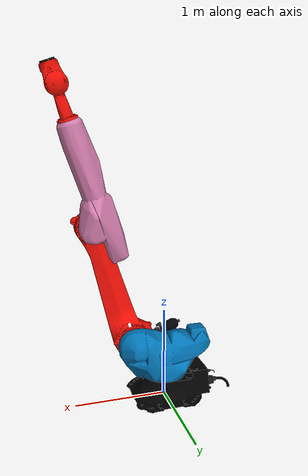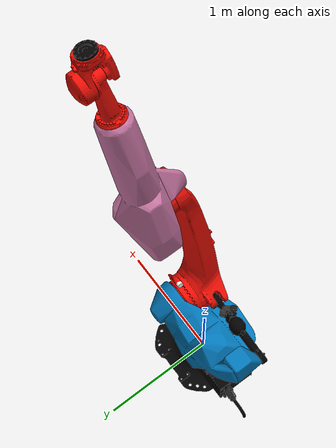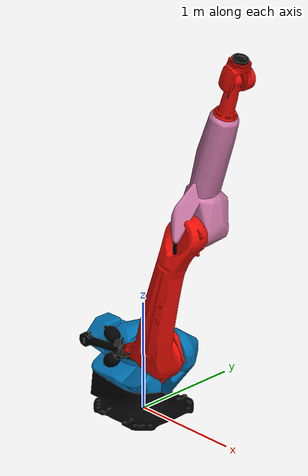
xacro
<?xml version="1.0"?>
<robot xmlns:xacro="http://www.ros.org/wiki/xacro" name="kr120_r3100_2">
  <!-- Import macro files  -->
  <xacro:include filename="$(find kuka_quantec_support)/urdf/kr120_r3100_2_macro.xacro"/>
  <xacro:include filename="$(find kuka_quantec_support)/urdf/kr_quantec_ros2_control_macro.xacro"/>
  <!-- Read additional arguments  -->
  <xacro:arg name="driver_version" default="rsi_only"/>
  <xacro:arg name="mode" default="hardware"/>
  <xacro:arg name="use_gpio" default="false"/>
  <xacro:arg name="roundtrip_time" default="0"/>
  <xacro:arg name="client_ip" default="0.0.0.0"/>
  <xacro:arg name="client_port" default="59152"/>
  <xacro:arg name="mxa_client_port" default="1337"/>
  <xacro:arg name="controller_ip" default="0.0.0.0"/>
  <xacro:arg name="verify_robot_model" default="true"/>
  <xacro:arg name="prefix" default=""/>
  <xacro:arg name="x" default="0"/>
  <xacro:arg name="y" default="0"/>
  <xacro:arg name="z" default="0"/>
  <xacro:arg name="roll" default="0"/>
  <xacro:arg name="pitch" default="0"/>
  <xacro:arg name="yaw" default="0"/>
  <xacro:kuka_quantec_ros2_control name="$(arg prefix)kr120_r3100_2" driver_version="$(arg driver_version)" client_ip="$(arg client_ip)" client_port="$(arg client_port)" mxa_client_port="$(arg mxa_client_port)" controller_ip="$(arg controller_ip)" prefix="$(arg prefix)" mode="$(arg mode)" use_gpio="$(arg use_gpio)" roundtrip_time="$(arg roundtrip_time)" verify_robot_model="$(arg verify_robot_model)">
    <ext_axes_ros2_control_joints/>
  </xacro:kuka_quantec_ros2_control>
  <!-- world link -->
  <link name="world"/>
  <!-- robot links, joints -->
  <xacro:kuka_kr120_r3100_2_robot prefix="$(arg prefix)" package_name="kuka_quantec_support"/>
  <!-- default world - base_link joint -->
  <joint name="$(arg prefix)world-base_link" type="fixed">
    <parent link="world"/>
    <child link="$(arg prefix)base_link"/>
    <origin xyz="$(arg x) $(arg y) $(arg z)" rpy="$(arg roll) $(arg pitch) $(arg yaw)"/>
  </joint>
</robot>

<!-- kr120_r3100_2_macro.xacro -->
<robot xmlns:xacro="http://www.ros.org/wiki/xacro" name="kr120_r3100_2">
  <xacro:macro name="kuka_kr120_r3100_2_robot" params="prefix package_name">
    <link name="${prefix}base"/>
    <link name="${prefix}base_link">
      <collision>
        <geometry>
          <mesh filename="package://${package_name}/meshes/kr120_r3100_2/collision/base_link.stl"/>
        </geometry>
        <origin rpy="0.0 -0.0 0.0" xyz="0.0 0.0 0.0"/>
      </collision>
      <inertial>
        <inertia ixx="12.830880390826945" ixy="0.0" ixz="0.0" iyy="9.01196989503174" iyz="0.0" izz="14.295886015581125"/>
        <mass value="2.2596E2"/>
        <origin rpy="-0.0508601314118394 -0.001988338987840268 1.523148744399526" xyz="-0.05948933351035582 0.0021559506107275673 0.20325069304301646"/>
      </inertial>
      <visual>
        <geometry>
          <mesh filename="package://${package_name}/meshes/kr120_r3100_2/visual/base_link.dae"/>
        </geometry>
        <origin rpy="0.0 -0.0 0.0" xyz="0.0 0.0 0.0"/>
      </visual>
    </link>
    <link name="${prefix}flange"/>
    <link name="${prefix}link_1">
      <collision>
        <geometry>
          <mesh filename="package://${package_name}/meshes/kr120_r3100_2/collision/link_1.stl"/>
        </geometry>
        <origin rpy="-3.141592653589793 0.0 -0.0" xyz="0.0 -3.742520618194312e-17 0.30560000000000004"/>
      </collision>
      <inertial>
        <inertia ixx="13.20885880475748" ixy="0.0" ixz="0.0" iyy="31.494985324996097" iyz="0.0" izz="33.88389081824636"/>
        <mass value="3.6307E2"/>
        <origin rpy="1.8661968490595326 0.10258164628689452 -0.2163241142005634" xyz="0.02878717602666153 0.011875249400941966 -0.23402828104773188"/>
      </inertial>
      <visual>
        <geometry>
          <mesh filename="package://${package_name}/meshes/kr120_r3100_2/visual/link_1.dae"/>
        </geometry>
        <origin rpy="-3.141592653589793 0.0 -0.0" xyz="0.0 -3.742520618194312e-17 0.30560000000000004"/>
      </visual>
    </link>
    <link name="${prefix}link_2">
      <collision>
        <geometry>
          <mesh filename="package://${package_name}/meshes/kr120_r3100_2/collision/link_2.stl"/>
        </geometry>
        <origin rpy="1.5707963267948968 -0.0 1.5707963267948966" xyz="-0.645 -0.32999999999999996 0.07200000000000009"/>
      </collision>
      <inertial>
        <inertia ixx="6.111566329697298" ixy="0.0" ixz="0.0" iyy="82.75093024358236" iyz="0.0" izz="83.25859671643983"/>
        <mass value="2.5056E2"/>
        <origin rpy="0.5376277345261109 0.09067448308201616 0.007191247120022904" xyz="0.5778711685823755 -0.0013846982758620701 -0.12557167943805878"/>
      </inertial>
      <visual>
        <geometry>
          <mesh filename="package://${package_name}/meshes/kr120_r3100_2/visual/link_2.dae"/>
        </geometry>
        <origin rpy="1.5707963267948968 -0.0 1.5707963267948966" xyz="-0.645 -0.32999999999999996 0.07200000000000009"/>
      </visual>
    </link>
    <link name="${prefix}link_3">
      <collision>
        <geometry>
          <mesh filename="package://${package_name}/meshes/kr120_r3100_2/collision/link_3.stl"/>
        </geometry>
        <origin rpy="1.5707963267948968 -0.0 -0.0" xyz="-0.33000000000000007 1.995 0.1750000000000001"/>
      </collision>
      <inertial>
        <inertia ixx="3.4879392458865768" ixy="0.0" ixz="0.0" iyy="31.684130673011424" iyz="0.0" izz="32.63110611057522"/>
        <mass value="1.9993E2"/>
        <origin rpy="2.1420966009616143 -0.0660111257078755 -0.06380435922826509" xyz="0.2623321662581903 -0.0766338718551493 0.1376750342619917"/>
      </inertial>
      <visual>
        <geometry>
          <mesh filename="package://${package_name}/meshes/kr120_r3100_2/visual/link_3.dae"/>
        </geometry>
        <origin rpy="1.5707963267948968 -0.0 -0.0" xyz="-0.33000000000000007 1.995 0.1750000000000001"/>
      </visual>
    </link>
    <link name="${prefix}link_4">
      <collision>
        <geometry>
          <mesh filename="package://${package_name}/meshes/kr120_r3100_2/collision/link_4.stl"/>
        </geometry>
        <origin rpy="1.8369701987210297e-16 1.5707963267948966 0.0" xyz="-2.11 2.0519898299681579e-19 1.3579999999999999"/>
      </collision>
      <inertial>
        <inertia ixx="0.1613243661415463" ixy="0.0" ixz="0.0" iyy="1.3645139545174996" iyz="0.0" izz="1.391581276345236"/>
        <mass value="4.2411794929E1"/>
        <origin rpy="1.571145455207035 -1.4368320268822927 -1.571207124768485" xyz="-7.576446514074066E-6 0.019202388293896762 -0.19788874875249593"/>
      </inertial>
      <visual>
        <geometry>
          <mesh filename="package://${package_name}/meshes/kr120_r3100_2/visual/link_4.dae"/>
        </geometry>
        <origin rpy="1.8369701987210297e-16 1.5707963267948966 0.0" xyz="-2.11 2.0519898299681579e-19 1.3579999999999999"/>
      </visual>
    </link>
    <link name="${prefix}link_5">
      <collision>
        <geometry>
          <mesh filename="package://${package_name}/meshes/kr120_r3100_2/collision/link_5.stl"/>
        </geometry>
        <origin rpy="1.5707963267948968 -3.749399456654644e-33 -6.123233995736766e-17" xyz="-1.7499999999999998 2.11 -0.09600000000000004"/>
      </collision>
      <inertial>
        <inertia ixx="0.20011190854380112" ixy="0.0" ixz="0.0" iyy="0.12055362677520111" iyz="0.0" izz="0.22095649492572356"/>
        <mass value="1.6991732133E1"/>
        <origin rpy="1.57047593518723 -0.8762558401259868 -0.002279628132921865" xyz="0.062235569792816754 3.031481162097196E-4 -0.06575324271016873"/>
      </inertial>
      <visual>
        <geometry>
          <mesh filename="package://${package_name}/meshes/kr120_r3100_2/visual/link_5.dae"/>
        </geometry>
        <origin rpy="1.5707963267948968 -3.749399456654644e-33 -6.123233995736766e-17" xyz="-1.7499999999999998 2.11 -0.09600000000000004"/>
      </visual>
    </link>
    <link name="${prefix}link_6">
      <collision>
        <geometry>
          <mesh filename="package://${package_name}/meshes/kr120_r3100_2/collision/link_6.stl"/>
        </geometry>
        <origin rpy="1.2246467991473532e-16 1.5707963267948966 0.0" xyz="-2.1100000000000003 -1.3543772457760985e-16 1.9164999999999999"/>
      </collision>
      <inertial>
        <inertia ixx="0.011456500000000001" ixy="0.0" ixz="0.0" iyy="0.011456500000000001" iyz="0.0" izz="0.014535"/>
        <mass value="6.6E0"/>
        <origin rpy="0.0 -0.0 0.0" xyz="0.0 0.0 -0.006500000000000001"/>
      </inertial>
      <visual>
        <geometry>
          <mesh filename="package://${package_name}/meshes/kr120_r3100_2/visual/link_6.dae"/>
        </geometry>
        <origin rpy="1.2246467991473532e-16 1.5707963267948966 0.0" xyz="-2.1100000000000003 -1.3543772457760985e-16 1.9164999999999999"/>
      </visual>
    </link>
    <link name="${prefix}tool0"/>
    <joint name="${prefix}base_link-base" type="fixed">
      <child link="${prefix}base"/>
      <parent link="${prefix}base_link"/>
    </joint>
    <joint name="${prefix}joint_1" type="revolute">
      <axis xyz="0.0 0.0 1.0"/>
      <child link="${prefix}link_1"/>
      <limit effort="7.29E3" lower="-3.2288591125E0" upper="3.2288591125E0" velocity="2.0384824411502178E0"/>
      <origin rpy="3.141592653589793 -0.0 0.0" xyz="0.0 0.0 0.30560000000000004"/>
      <parent link="${prefix}base_link"/>
    </joint>
    <joint name="${prefix}joint_2" type="revolute">
      <axis xyz="0.0 0.0 1.0"/>
      <child link="${prefix}link_2"/>
      <limit effort="8.91E3" lower="-2.44346095E0" upper="-8.72664625E-2" velocity="1.9451869809220728E0"/>
      <origin rpy="1.5707963267948966 -0.0 0.0" xyz="0.33 0.07200000000000001 -0.3394"/>
      <parent link="${prefix}link_1"/>
    </joint>
    <joint name="${prefix}joint_3" type="revolute">
      <axis xyz="0.0 0.0 1.0"/>
      <child link="${prefix}link_3"/>
      <limit effort="7.6531502813383E3" lower="-2.0943951E0" upper="2.93215314E0" velocity="2.0832834197299266E0"/>
      <origin rpy="0.0 -0.0 0.0" xyz="1.35 0.0 -0.10300000000000001"/>
      <parent link="${prefix}link_2"/>
    </joint>
    <joint name="${prefix}joint_4" type="revolute">
      <axis xyz="0.0 0.0 1.0"/>
      <child link="${prefix}link_4"/>
      <limit effort="2.46239214070738E3" lower="-6.108652375E0" upper="6.108652375E0" velocity="3.3161255787892263E0"/>
      <origin rpy="1.5707963267948966 -0.0 -1.5707963267948966" xyz="1.028 -0.115 0.17500000000000002"/>
      <parent link="${prefix}link_3"/>
    </joint>
    <joint name="${prefix}joint_5" type="revolute">
      <axis xyz="0.0 0.0 1.0"/>
      <child link="${prefix}link_5"/>
      <limit effort="1.49169880314891E3" lower="-2.1816615625E0" upper="2.1816615625E0" velocity="3.1415926535897931E0"/>
      <origin rpy="0.0 1.5707963267948966 1.5707963267948966" xyz="0.0 0.096 -0.392"/>
      <parent link="${prefix}link_4"/>
    </joint>
    <joint name="${prefix}joint_6" type="revolute">
      <axis xyz="0.0 0.0 1.0"/>
      <child link="${prefix}link_6"/>
      <limit effort="9.084312E2" lower="-6.108652375E0" upper="6.108652375E0" velocity="4.5378560551852569E0"/>
      <origin rpy="1.5707963267948966 -0.0 -1.5707963267948966" xyz="0.1665 0.0 -0.096"/>
      <parent link="${prefix}link_5"/>
    </joint>
    <joint name="${prefix}link6-flange" type="fixed">
      <child link="${prefix}flange"/>
      <origin rpy="0.0 1.5707963267948966 0.0" xyz="0.0 0.0 -0.0485"/>
      <parent link="${prefix}link_6"/>
    </joint>
    <joint name="${prefix}link6-tool0" type="fixed">
      <child link="${prefix}tool0"/>
      <origin rpy="3.141592653589793 1.2246467991473532E-16 3.141592653589793" xyz="0.0 0.0 -0.0485"/>
      <parent link="${prefix}link_6"/>
    </joint>
  </xacro:macro>
</robot>
